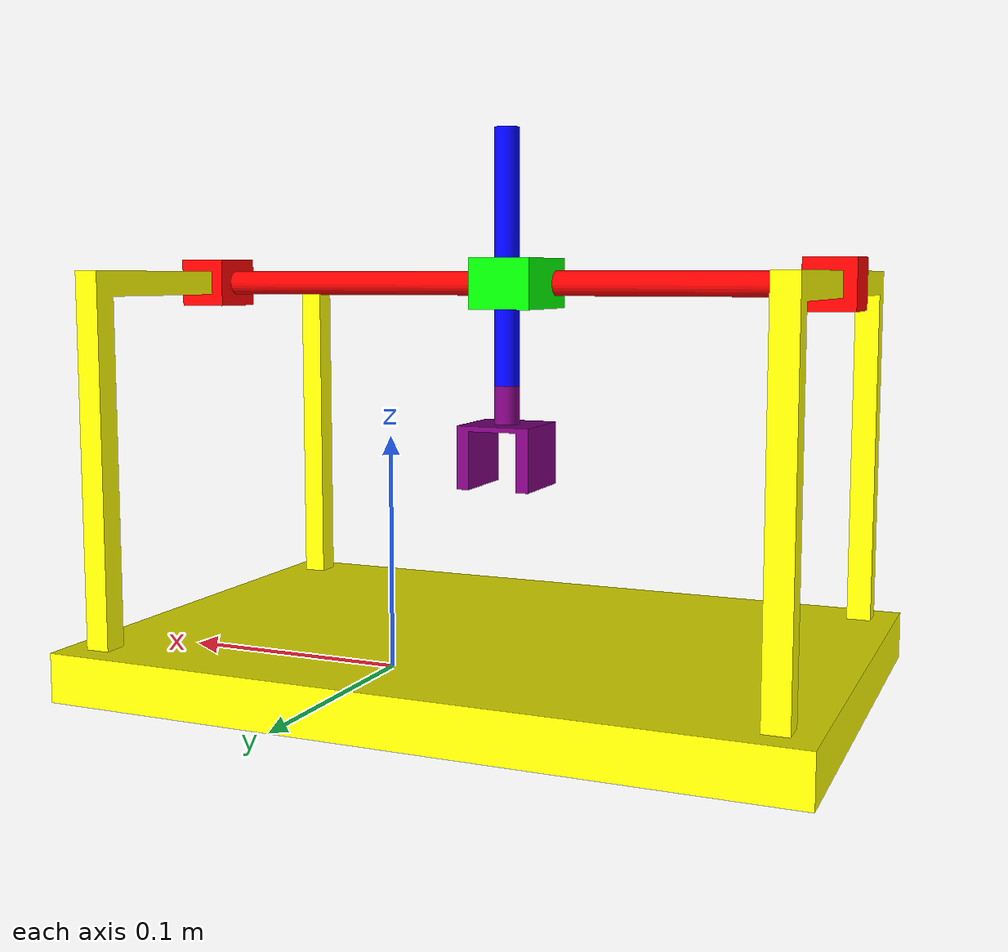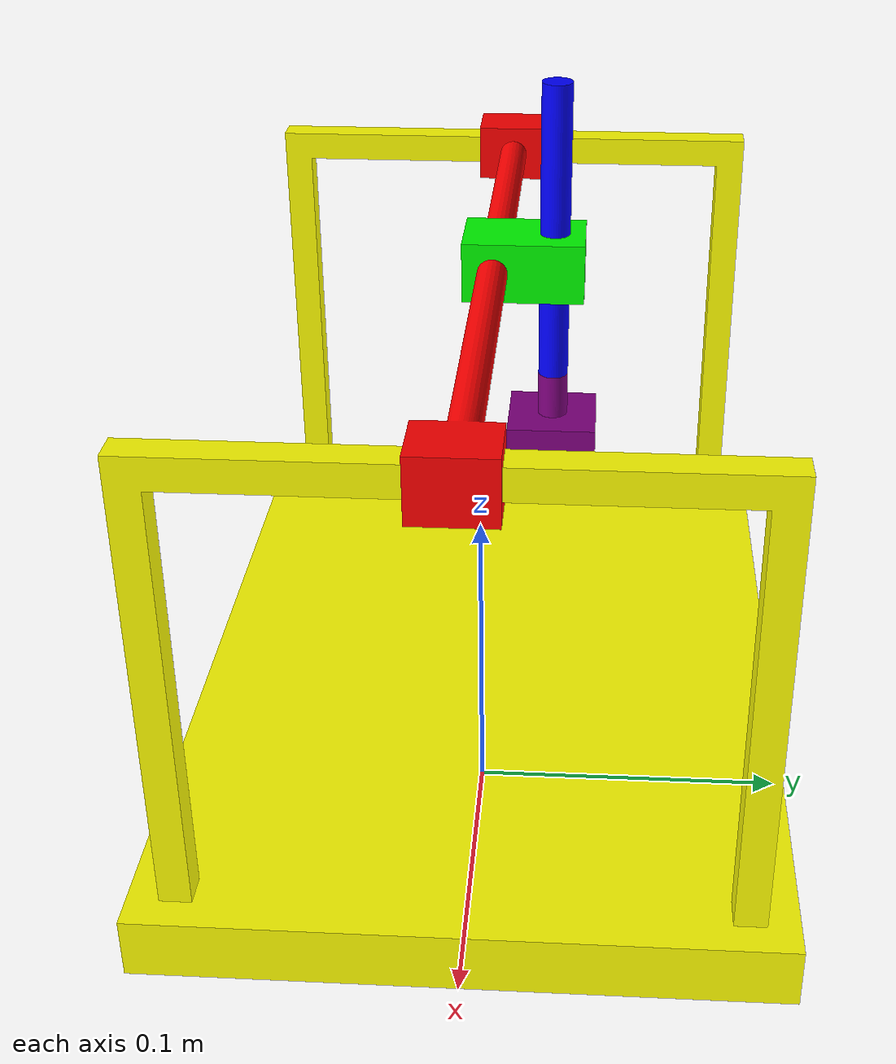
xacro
<?xml version="1.0" ?>
<robot name="gantry_robot" xmlns:xacro="http://www.ros.org/wiki/xacro">

<xacro:include filename="$(find gantry_bot)/description/materials.xacro" />
<xacro:include filename="$(find gantry_bot)/description/Base_link.trans" />
<xacro:include filename="$(find gantry_bot)/description/Base_link.gazebo" />

    <link name="base_link">
      <inertial>
        <origin xyz="-0.05 -1.407886535252211e-17 0.01778637770897833" rpy="0 0 0"/>
        <mass value="10.142199999999999"/>
        <inertia ixx="0.045365" iyy="0.09384" izz="0.119161" ixy="-0.0" iyz="0.0" ixz="-0.0"/>
      </inertial>
      <visual>
        <origin xyz="0 0 0" rpy="0 0 0"/>
        <geometry>
          <mesh filename="package://gantry_bot/meshes/base_link.stl" scale="0.001 0.001 0.001"/>
        </geometry>
        <material name="yellow"/>
      </visual>
      <collision>
        <origin xyz="0 0 0" rpy="0 0 0"/>
        <geometry>
          <mesh filename="package://gantry_bot/meshes/base_link.stl" scale="0.001 0.001 0.001"/>
        </geometry>
      </collision>
    </link>

    <link name="link_1_1">
      <inertial>
        <origin xyz="0.13000000000000006 0.00028345586432649173 0.0050000000000000044" rpy="0 0 0"/>
        <mass value="0.27188438956674926"/>
        <inertia ixx="1.3e-05" iyy="0.00296" izz="0.002961" ixy="-0.0" iyz="-0.0" ixz="-0.0"/>
      </inertial>
      <visual>
        <origin xyz="0.18 -0.0 -0.16" rpy="0 0 0"/>
        <geometry>
          <mesh filename="package://gantry_bot/meshes/link_1_1.stl" scale="0.001 0.001 0.001"/>
        </geometry>
        <material name="red"/>
      </visual>
      <collision>
        <origin xyz="0.18 -0.0 -0.16" rpy="0 0 0"/>
        <geometry>
          <mesh filename="package://gantry_bot/meshes/link_1_1.stl" scale="0.001 0.001 0.001"/>
        </geometry>
      </collision>
    </link>

    <link name="link_2_1">
      <inertial>
        <origin xyz="-0.012547699039425306 0.010238495269898402 -1.1102230246251565e-16" rpy="0 0 0"/>
        <mass value="0.1292558098779849"/>
        <inertia ixx="2.3e-05" iyy="1.2e-05" izz="2.5e-05" ixy="0.0" iyz="0.0" ixz="-0.0"/>
      </inertial>
      <visual>
        <origin xyz="0.05 -0.0005 -0.165" rpy="0 0 0"/>
        <geometry>
          <mesh filename="package://gantry_bot/meshes/link_2_1.stl" scale="0.001 0.001 0.001"/>
        </geometry>
        <material name="green"/>
      </visual>
      <collision>
        <origin xyz="0.05 -0.0005 -0.165" rpy="0 0 0"/>
        <geometry>
          <mesh filename="package://gantry_bot/meshes/link_2_1.stl" scale="0.001 0.001 0.001"/>
        </geometry>
      </collision>
    </link>

    <link name="link_3_1">
      <inertial>
        <origin xyz="1.9371516890576146e-10 4.917382889768618e-10 -0.001673387096774226" rpy="0 0 0"/>
        <mass value="0.06370888102092302"/>
        <inertia ixx="5.7e-05" iyy="5.7e-05" izz="1e-06" ixy="0.0" iyz="0.0" ixz="0.0"/>
      </inertial>
      <visual>
        <origin xyz="0.062 -0.0205 -0.175" rpy="0 0 0"/>
        <geometry>
        <mesh filename="package://gantry_bot/meshes/link_3_1.stl" scale="0.001 0.001 0.001"/>
        </geometry>
        <material name="blue"/>
      </visual>
      <collision>
        <origin xyz="0.062 -0.0205 -0.175" rpy="0 0 0"/>
        <geometry>
          <mesh filename="package://gantry_bot/meshes/link_3_1.stl" scale="0.001 0.001 0.001"/>
        </geometry>
      </collision>
    </link>

    <link name="end_effector_1">
      <inertial>
        <origin xyz="1.8784021560414033e-10 8.125000464098697e-10 -0.02431235615011955" rpy="0 0 0"/>
        <mass value="0.07548794288214095"/>
        <inertia ixx="1.1e-05" iyy="1.6e-05" izz="1.5e-05" ixy="0.0" iyz="0.0" ixz="0.0"/>
      </inertial>
      <visual>
        <origin xyz="0.062 -0.0205 -0.125" rpy="0 0 0"/>
        <geometry>
          <mesh filename="package://gantry_bot/meshes/end_effector_1.stl" scale="0.001 0.001 0.001"/>
        </geometry>
        <material name="purple"/>
      </visual>
      <collision>
        <origin xyz="0.062 -0.0205 -0.125" rpy="0 0 0"/>
        <geometry>
          <mesh filename="package://gantry_bot/meshes/end_effector_1.stl" scale="0.001 0.001 0.001"/>
        </geometry>
      </collision>
    </link>

    <joint name="Slider 1" type="prismatic">
      <origin xyz="-0.18 0.0 0.16" rpy="0 0 0"/>
      <parent link="base_link"/>
      <child link="link_1_1"/>
      <axis xyz="0.0 1.0 0.0"/>
      <limit upper="0.06" lower="-0.06" effort="100" velocity="100"/>
    </joint>

    <joint name="Slider 2" type="prismatic">
      <origin xyz="0.13 0.0005 0.005" rpy="0 0 0"/>
      <parent link="link_1_1"/>
      <child link="link_2_1"/>
      <axis xyz="1.0 -0.0 0.0"/>
      <limit upper="0.12" lower="-0.09" effort="100" velocity="100"/>
    </joint>

    <joint name="Slider 3" type="prismatic">
      <origin xyz="-0.012 0.02 0.01" rpy="0 0 0"/>
      <parent link="link_2_1"/>
      <child link="link_3_1"/>
      <axis xyz="-0.0 -0.0 -1.0"/>
      <limit upper="0.05" lower="-0.02" effort="100" velocity="100"/>
    </joint>

    <joint name="Ball 4" type="continuous">
      <origin xyz="0.0 0.0 -0.05" rpy="0 0 0"/>
      <parent link="link_3_1"/>
      <child link="end_effector_1"/>
    </joint>

</robot>

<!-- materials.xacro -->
<robot name="gantry_bot" xmlns:xacro="http://www.ros.org/wiki/xacro" >

<material name="silver">
  <color rgba="0.700 0.700 0.700 1.000"/>
</material>

<material name="yellow">
  <color rgba="1 1 0 1"/>
</material>

<material name="blue">
  <color rgba="0 0 1 1"/>
</material>

<material name="red">
  <color rgba="1 0 0 1"/>
</material>

<material name="green">
  <color rgba="0 1 0 1"/>
</material>

<material name="purple">
  <color rgba="0.5 0 0.5 1"/>
</material>

</robot>

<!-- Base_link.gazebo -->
<robot name="Base_link" xmlns:xacro="http://www.ros.org/wiki/xacro" >

<xacro:property name="body_color" value="Gazebo/Silver" />

<gazebo>
  <plugin name="control" filename="libgazebo_ros_control.so"/>
</gazebo>
<gazebo reference="base_link">
  <material>${body_color}</material>
  <mu1>0.2</mu1>
  <mu2>0.2</mu2>
  <selfCollide>true</selfCollide>
  <gravity>true</gravity>
</gazebo>

<gazebo reference="link_1_1">
  <material>${body_color}</material>
  <mu1>0.2</mu1>
  <mu2>0.2</mu2>
  <selfCollide>true</selfCollide>
</gazebo>

<gazebo reference="link_2_1">
  <material>${body_color}</material>
  <mu1>0.2</mu1>
  <mu2>0.2</mu2>
  <selfCollide>true</selfCollide>
</gazebo>

<gazebo reference="link_3_1">
  <material>${body_color}</material>
  <mu1>0.2</mu1>
  <mu2>0.2</mu2>
  <selfCollide>true</selfCollide>
</gazebo>

<gazebo reference="end_effector_1">
  <material>${body_color}</material>
  <mu1>0.2</mu1>
  <mu2>0.2</mu2>
  <selfCollide>true</selfCollide>
</gazebo>

</robot>
